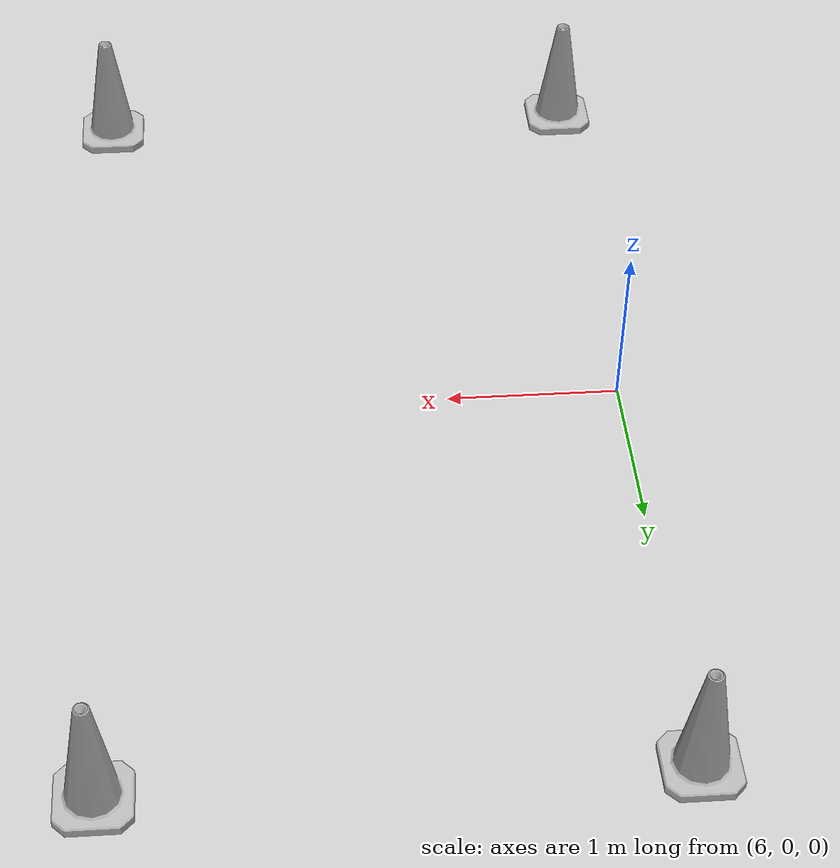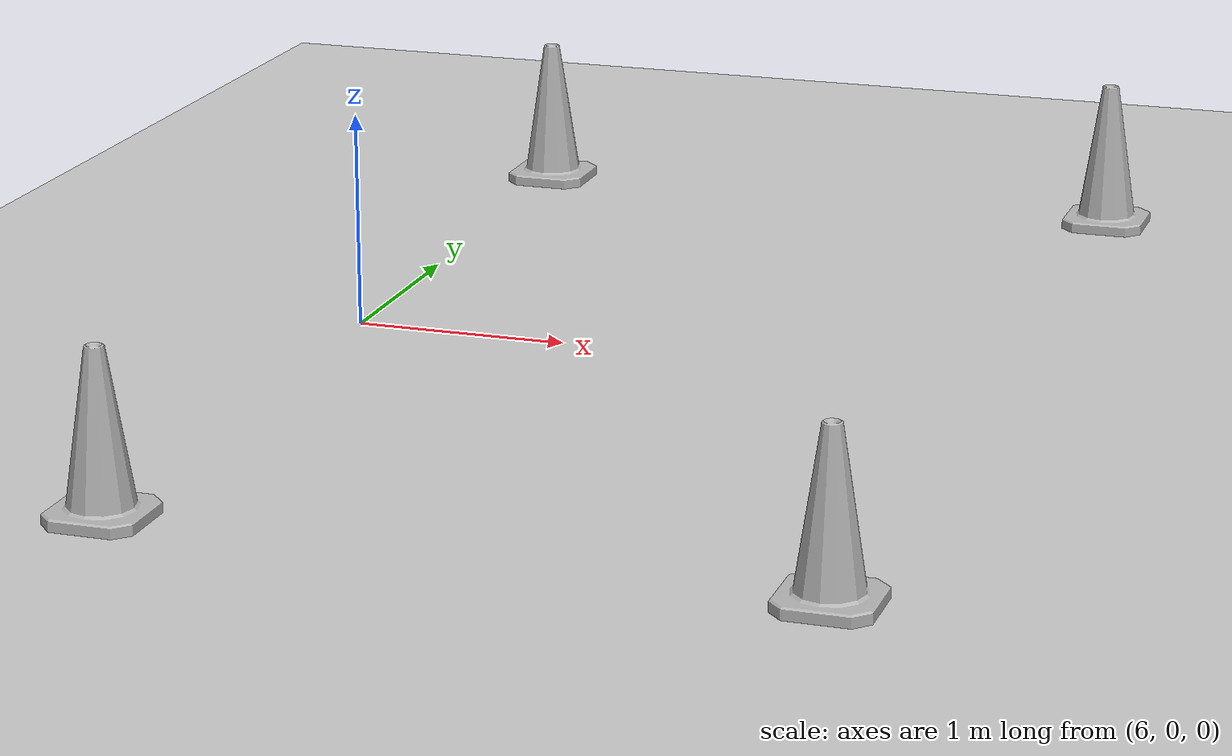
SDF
<sdf version="1.7">
 <world name="default">
  <model name="ground_plane">
   <static>1</static>
   <link name="link">
    <collision name="collision">
     <geometry><plane><normal>0 0 1</normal><size>100 100</size></plane></geometry>
     <surface>
      <contact><collide_bitmask>65535</collide_bitmask></contact>
      <friction><ode><mu>100</mu><mu2>50</mu2></ode></friction>
     </surface>
    </collision>
    <visual name="visual">
     <cast_shadows>0</cast_shadows>
     <geometry><plane><normal>0 0 1</normal><size>100 100</size></plane></geometry>
     <material>
      <script><uri>file://media/materials/scripts/gazebo.material</uri><name>Gazebo/Grey</name></script>
     </material>
    </visual>
   </link>
  </model>
  <model name="Construction_Cone_b_1">
   <link name="link">
    <inertial>
     <inertia><ixx>1</ixx><ixy>0</ixy><ixz>0</ixz><iyy>1</iyy><iyz>0</iyz><izz>1</izz></inertia>
     <mass>1</mass>
    </inertial>
    <visual name="visual">
     <geometry>
      <mesh><scale>8 8 6.7</scale><uri>./construction_cone/meshes/construction_cone_b.dae</uri></mesh>
     </geometry>
     <material><shader type="pixel"/></material>
    </visual>
    <collision name="collision">
     <geometry>
      <mesh><uri>./construction_cone/meshes/construction_cone_b.dae</uri><scale>8 8 6.7</scale></mesh>
     </geometry>
     <surface>
      <friction>
       <ode><mu>1</mu><mu2>1</mu2><fdir1>0 0 0</fdir1><slip1>0</slip1><slip2>0</slip2></ode>
       <torsional>
        <coefficient>1</coefficient>
        <patch_radius>0</patch_radius>
        <surface_radius>0</surface_radius>
        <use_patch_radius>1</use_patch_radius>
        <ode><slip>0</slip></ode>
       </torsional>
      </friction>
      <bounce><restitution_coefficient>0</restitution_coefficient><threshold>1e+06</threshold></bounce>
      <contact>
       <collide_without_contact>0</collide_without_contact>
       <collide_without_contact_bitmask>1</collide_without_contact_bitmask>
       <collide_bitmask>1</collide_bitmask>
       <ode>
        <soft_cfm>0</soft_cfm>
        <soft_erp>0.2</soft_erp>
        <kp>1e+13</kp>
        <kd>1</kd>
        <max_vel>0.01</max_vel>
        <min_depth>0</min_depth>
       </ode>
       <bullet>
        <split_impulse>1</split_impulse>
        <split_impulse_penetration_threshold>-0.01</split_impulse_penetration_threshold>
        <soft_cfm>0</soft_cfm>
        <soft_erp>0.2</soft_erp>
        <kp>1e+13</kp>
        <kd>1</kd>
       </bullet>
      </contact>
     </surface>
    </collision>
   </link>
   <static>0</static>
   <pose>5.99916 -2.70083 -0 0 -0 0</pose>
  </model>
  <model name="Construction_Cone_b_2">
   <link name="link">
    <inertial>
     <inertia><ixx>1</ixx><ixy>0</ixy><ixz>0</ixz><iyy>1</iyy><iyz>0</iyz><izz>1</izz></inertia>
     <mass>1</mass>
    </inertial>
    <visual name="visual">
     <geometry>
      <mesh><scale>8 8 6.7</scale><uri>./construction_cone/meshes/construction_cone_b.dae</uri></mesh>
     </geometry>
     <material><shader type="pixel"/></material>
    </visual>
    <collision name="collision">
     <geometry>
      <mesh><uri>./construction_cone/meshes/construction_cone_b.dae</uri><scale>8 8 6.7</scale></mesh>
     </geometry>
     <surface>
      <friction>
       <ode><mu>1</mu><mu2>1</mu2><fdir1>0 0 0</fdir1><slip1>0</slip1><slip2>0</slip2></ode>
       <torsional>
        <coefficient>1</coefficient>
        <patch_radius>0</patch_radius>
        <surface_radius>0</surface_radius>
        <use_patch_radius>1</use_patch_radius>
        <ode><slip>0</slip></ode>
       </torsional>
      </friction>
      <bounce><restitution_coefficient>0</restitution_coefficient><threshold>1e+06</threshold></bounce>
      <contact>
       <collide_without_contact>0</collide_without_contact>
       <collide_without_contact_bitmask>1</collide_without_contact_bitmask>
       <collide_bitmask>1</collide_bitmask>
       <ode>
        <soft_cfm>0</soft_cfm>
        <soft_erp>0.2</soft_erp>
        <kp>1e+13</kp>
        <kd>1</kd>
        <max_vel>0.01</max_vel>
        <min_depth>0</min_depth>
       </ode>
       <bullet>
        <split_impulse>1</split_impulse>
        <split_impulse_penetration_threshold>-0.01</split_impulse_penetration_threshold>
        <soft_cfm>0</soft_cfm>
        <soft_erp>0.2</soft_erp>
        <kp>1e+13</kp>
        <kd>1</kd>
       </bullet>
      </contact>
     </surface>
    </collision>
   </link>
   <static>0</static>
   <pose>8.99845 -2.70106 -0 0 -0 0</pose>
  </model>
  <model name="Construction_Cone_y_1">
   <link name="link">
    <inertial>
     <inertia><ixx>1</ixx><ixy>0</ixy><ixz>0</ixz><iyy>1</iyy><iyz>0</iyz><izz>1</izz></inertia>
     <mass>1</mass>
    </inertial>
    <visual name="visual">
     <geometry>
      <mesh><scale>8 8 6.7</scale><uri>./construction_cone/meshes/construction_cone_y.dae</uri></mesh>
     </geometry>
     <material><shader type="pixel"/></material>
    </visual>
    <collision name="collision">
     <geometry>
      <mesh><uri>./construction_cone/meshes/construction_cone_y.dae</uri><scale>8 8 6.7</scale></mesh>
     </geometry>
     <surface>
      <friction>
       <ode><mu>1</mu><mu2>1</mu2><fdir1>0 0 0</fdir1><slip1>0</slip1><slip2>0</slip2></ode>
       <torsional>
        <coefficient>1</coefficient>
        <patch_radius>0</patch_radius>
        <surface_radius>0</surface_radius>
        <use_patch_radius>1</use_patch_radius>
        <ode><slip>0</slip></ode>
       </torsional>
      </friction>
      <bounce><restitution_coefficient>0</restitution_coefficient><threshold>1e+06</threshold></bounce>
      <contact>
       <collide_without_contact>0</collide_without_contact>
       <collide_without_contact_bitmask>1</collide_without_contact_bitmask>
       <collide_bitmask>1</collide_bitmask>
       <ode>
        <soft_cfm>0</soft_cfm>
        <soft_erp>0.2</soft_erp>
        <kp>1e+13</kp>
        <kd>1</kd>
        <max_vel>0.01</max_vel>
        <min_depth>0</min_depth>
       </ode>
       <bullet>
        <split_impulse>1</split_impulse>
        <split_impulse_penetration_threshold>-0.01</split_impulse_penetration_threshold>
        <soft_cfm>0</soft_cfm>
        <soft_erp>0.2</soft_erp>
        <kp>1e+13</kp>
        <kd>1</kd>
       </bullet>
      </contact>
     </surface>
    </collision>
   </link>
   <static>0</static>
   <pose>5.99882 2.70196 -0 0 -0 0</pose>
  </model>
  <model name="Construction_Cone_y_2">
   <link name="link">
    <inertial>
     <inertia><ixx>1</ixx><ixy>0</ixy><ixz>0</ixz><iyy>1</iyy><iyz>0</iyz><izz>1</izz></inertia>
     <mass>1</mass>
    </inertial>
    <visual name="visual">
     <geometry>
      <mesh><scale>8 8 6.7</scale><uri>./construction_cone/meshes/construction_cone_y.dae</uri></mesh>
     </geometry>
     <material><shader type="pixel"/></material>
    </visual>
    <collision name="collision">
     <geometry>
      <mesh><uri>./construction_cone/meshes/construction_cone_y.dae</uri><scale>8 8 6.7</scale></mesh>
     </geometry>
     <surface>
      <friction>
       <ode><mu>1</mu><mu2>1</mu2><fdir1>0 0 0</fdir1><slip1>0</slip1><slip2>0</slip2></ode>
       <torsional>
        <coefficient>1</coefficient>
        <patch_radius>0</patch_radius>
        <surface_radius>0</surface_radius>
        <use_patch_radius>1</use_patch_radius>
        <ode><slip>0</slip></ode>
       </torsional>
      </friction>
      <bounce><restitution_coefficient>0</restitution_coefficient><threshold>1e+06</threshold></bounce>
      <contact>
       <collide_without_contact>0</collide_without_contact>
       <collide_without_contact_bitmask>1</collide_without_contact_bitmask>
       <collide_bitmask>1</collide_bitmask>
       <ode>
        <soft_cfm>0</soft_cfm>
        <soft_erp>0.2</soft_erp>
        <kp>1e+13</kp>
        <kd>1</kd>
        <max_vel>0.01</max_vel>
        <min_depth>0</min_depth>
       </ode>
       <bullet>
        <split_impulse>1</split_impulse>
        <split_impulse_penetration_threshold>-0.01</split_impulse_penetration_threshold>
        <soft_cfm>0</soft_cfm>
        <soft_erp>0.2</soft_erp>
        <kp>1e+13</kp>
        <kd>1</kd>
       </bullet>
      </contact>
     </surface>
    </collision>
   </link>
   <static>0</static>
   <pose>8.99971 2.70149 -0 0 -0 0</pose>
  </model>
 </world>
</sdf>
